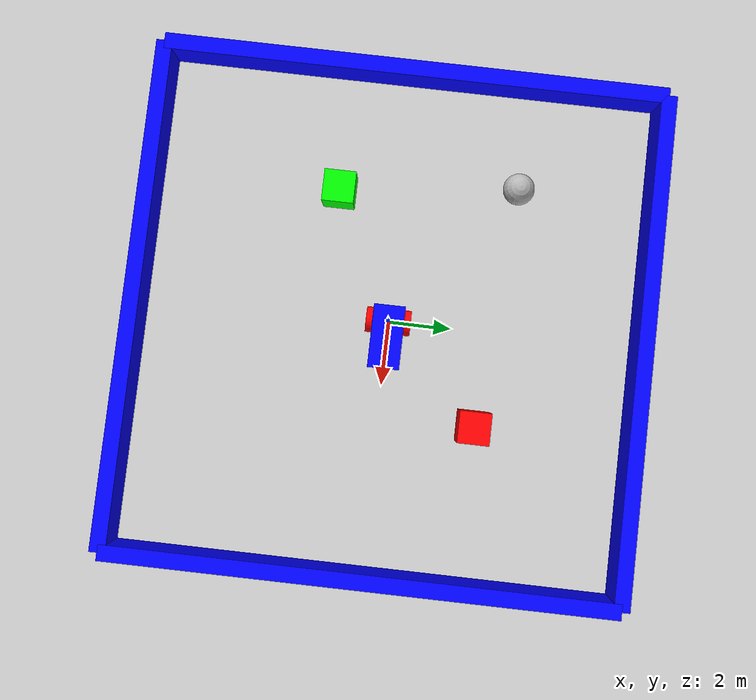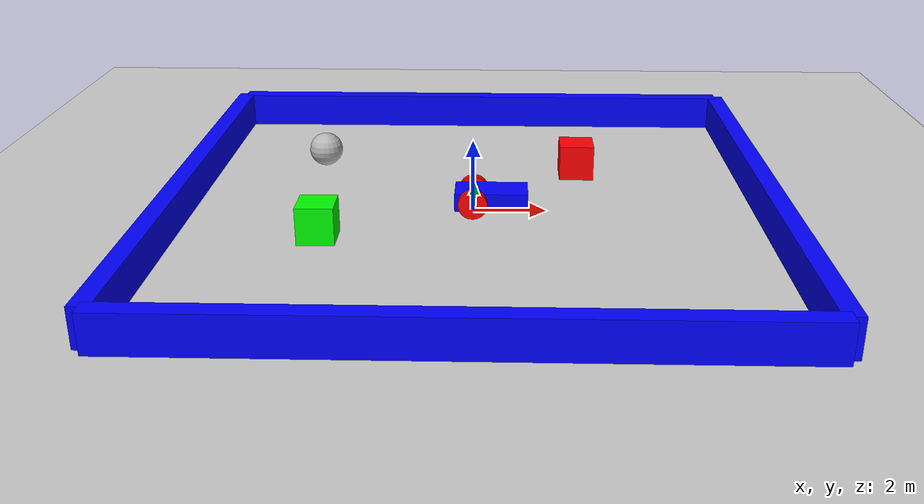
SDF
<?xml version="1.0" ?>
<sdf version='1.9'>
  <world name='car_world'>
    <physics name='1ms' type='ignored'>
      <max_step_size>0.001</max_step_size>
      <real_time_factor>1</real_time_factor>
      <real_time_update_rate>1000</real_time_update_rate>
    </physics>
    <plugin name='ignition::gazebo::systems::Physics' filename='ignition-gazebo-physics-system'/>
    <plugin name='ignition::gazebo::systems::UserCommands' filename='ignition-gazebo-user-commands-system'/>
    <plugin name='ignition::gazebo::systems::SceneBroadcaster' filename='ignition-gazebo-scene-broadcaster-system'/>
    <plugin filename="ignition-gazebo-imu-system"
      name="ignition::gazebo::systems::Imu">
    </plugin>
    <plugin filename="ignition-gazebo-sensors-system"
      name="ignition::gazebo::systems::Sensors">
        <render_engine>ogre2</render_engine>
    </plugin>
    <plugin filename="ignition-gazebo-contact-system"
      name="ignition::gazebo::systems::Contact">
    </plugin>

    <gravity>0 0 -9.8</gravity>
    <magnetic_field>6e-06 2.3e-05 -4.2e-05</magnetic_field>
    <atmosphere type='adiabatic'/>
    <scene>
      <ambient>0.4 0.4 0.4 1</ambient>
      <background>0.7 0.7 0.7 1</background>
      <shadows>true</shadows>
    </scene>

    <model name='ground_plane'>
      <static>true</static>
      <link name='link'>
        <collision name='collision'>
          <geometry>
            <plane>
              <normal>0 0 1</normal>
              <size>1 1</size>
            </plane>
          </geometry>
          <surface>
            <friction>
              <ode/>
            </friction>
            <bounce/>
            <contact/>
          </surface>
        </collision>
        <visual name='visual'>
          <geometry>
            <plane>
              <normal>0 0 1</normal>
              <size>100 100</size>
            </plane>
          </geometry>
          <material>
            <ambient>0.8 0.8 0.8 1</ambient>
            <diffuse>0.8 0.8 0.8 1</diffuse>
            <specular>0.8 0.8 0.8 1</specular>
          </material>
        </visual>
        <pose>0 0 0 0 -0 0</pose>
        <inertial>
          <pose>0 0 0 0 -0 0</pose>
          <mass>1</mass>
          <inertia>
            <ixx>1</ixx>
            <ixy>0</ixy>
            <ixz>0</ixz>
            <iyy>1</iyy>
            <iyz>0</iyz>
            <izz>1</izz>
          </inertia>
        </inertial>
        <enable_wind>false</enable_wind>
      </link>
      <pose>0 0 0 0 -0 0</pose>
      <self_collide>false</self_collide>
    </model>

    <include>
      <uri>file://home/robot/rg_ws/install/asm_description/share/asm_description/models/vehicle_blue.sdf</uri>
    </include>

    <model name='sphere'>
      <pose>-4.63224 3.65533 0.5 0 -0 0</pose>
      <link name='sphere_link'>
        <inertial>
          <inertia>
            <ixx>0.10000000000000001</ixx>
            <ixy>0</ixy>
            <ixz>0</ixz>
            <iyy>0.10000000000000001</iyy>
            <iyz>0</iyz>
            <izz>0.10000000000000001</izz>
          </inertia>
          <mass>1</mass>
          <pose>0 0 0 0 -0 0</pose>
        </inertial>
        <collision name='sphere_collision'>
          <geometry>
            <sphere>
              <radius>0.5</radius>
            </sphere>
          </geometry>
          <surface>
            <friction>
              <ode/>
            </friction>
            <bounce/>
            <contact/>
          </surface>
        </collision>
        <visual name='sphere_visual'>
          <geometry>
            <sphere>
              <radius>0.5</radius>
            </sphere>
          </geometry>
          <material>
            <ambient>0.3 0.3 0.3 1</ambient>
            <diffuse>0.7 0.7 0.7 1</diffuse>
            <specular>1 1 1 1</specular>
          </material>
        </visual>
        <pose>0 0 0 0 -0 0</pose>
        <enable_wind>false</enable_wind>
      </link>
      <static>false</static>
      <self_collide>false</self_collide>
    </model>
    <light name='sun' type='directional'>
      <pose>0 0 10 0 -0 0</pose>
      <cast_shadows>true</cast_shadows>
      <intensity>1</intensity>
      <direction>-0.5 0.1 -0.9</direction>
      <diffuse>0.8 0.8 0.8 1</diffuse>
      <specular>0.2 0.2 0.2 1</specular>
      <attenuation>
        <range>1000</range>
        <linear>0.01</linear>
        <constant>0.90000000000000002</constant>
        <quadratic>0.001</quadratic>
      </attenuation>
      <spot>
        <inner_angle>0</inner_angle>
        <outer_angle>0</outer_angle>
        <falloff>0</falloff>
      </spot>
    </light>
    <!-- Existing wall -->
    <model name='wall'>
      <static>true</static>
      <pose>8 0 0 0 0 0</pose>
      <link name='box'>
        <pose/>
        <visual name='visual'>
          <geometry>
            <box>
              <size>0.5 16.0 2.0</size>
            </box>
          </geometry>
          <material>
            <ambient>0.0 0.0 1.0 1</ambient>
            <diffuse>0.0 0.0 1.0 1</diffuse>
            <specular>0.0 0.0 1.0 1</specular>
          </material>
        </visual>
        <collision name='collision'>
          <geometry>
            <box>
              <size>0.5 16.0 2.0</size>
            </box>
          </geometry>
        </collision>
        <sensor name='sensor_contact' type='contact'>
          <contact>
            <collision>collision</collision>
          </contact>
        </sensor>
      </link>

    </model>

    <!-- New wall 1 -->
    <model name='wall_1'>
      <static>true</static>
      <pose>0 8 0 0 0 1.5708</pose>
      <link name='box'>
        <pose/>
        <visual name='visual'>
          <geometry>
            <box>
              <size>0.5 16.0 2.0</size>
            </box>
          </geometry>
          <material>
            <ambient>0.0 0.0 1.0 1</ambient>
            <diffuse>0.0 0.0 1.0 1</diffuse>
            <specular>0.0 0.0 1.0 1</specular>
          </material>
        </visual>
        <collision name='collision'>
          <geometry>
            <box>
              <size>0.5 16.0 2.0</size>
            </box>
          </geometry>
        </collision>
        <sensor name='sensor_contact' type='contact'>
          <contact>
            <collision>collision</collision>
          </contact>
        </sensor>
      </link>
    </model>

    <!-- New wall 2 -->
    <model name='wall_2'>
      <static>true</static>
      <pose>0 -8 0 0 0 1.5708</pose>
      <link name='box'>
        <pose/>
        <visual name='visual'>
          <geometry>
            <box>
              <size>0.5 16.0 2.0</size>
            </box>
          </geometry>
          <material>
            <ambient>0.0 0.0 1.0 1</ambient>
            <diffuse>0.0 0.0 1.0 1</diffuse>
            <specular>0.0 0.0 1.0 1</specular>
          </material>
        </visual>
        <collision name='collision'>
          <geometry>
            <box>
              <size>0.5 16.0 2.0</size>
            </box>
          </geometry>
        </collision>
        <sensor name='sensor_contact' type='contact'>
          <contact>
            <collision>collision</collision>
          </contact>
        </sensor>
      </link>

    </model>
    <!-- New wall 3 -->
    <model name='wall_3'>
      <static>true</static>
      <pose>-8 0 0 0 0 0</pose>
      <link name='box'>
        <pose/>
        <visual name='visual'>
          <geometry>
            <box>
              <size>0.5 16.0 2.0</size>
            </box>
          </geometry>
          <material>
            <ambient>0.0 0.0 1.0 1</ambient>
            <diffuse>0.0 0.0 1.0 1</diffuse>
            <specular>0.0 0.0 1.0 1</specular>
          </material>
        </visual>
        <collision name='collision'>
          <geometry>
            <box>
              <size>0.5 16.0 2.0</size>
            </box>
          </geometry>
        </collision>
        <sensor name='sensor_contact' type='contact'>
          <contact>
            <collision>collision</collision>
          </contact>
        </sensor>
      </link>

    </model>

    <!-- Obstacle 1 -->
    <model name='obstacle_1'>
      <static>true</static>
      <pose>3 3 0 0 0 0</pose>
      <link name='box'>
        <pose/>
        <visual name='visual'>
          <geometry>
            <box>
              <size>1 1 2</size>
            </box>
          </geometry>
          <material>
            <ambient>1.0 0.0 0.0 1</ambient>
            <diffuse>1.0 0.0 0.0 1</diffuse>
            <specular>1.0 0.0 0.0 1</specular>
          </material>
        </visual>
        <collision name='collision'>
          <geometry>
            <box>
              <size>1 1 2</size>
            </box>
          </geometry>
        </collision>
      </link>
    </model>

    <!-- Obstacle 2 -->
    <model name='obstacle_2'>
      <static>true</static>
      <pose>-4 -2 0 0 0 0</pose>
      <link name='box'>
        <pose/>
        <visual name='visual'>
          <geometry>
            <box>
              <size>1 1 2</size>
            </box>
          </geometry>
          <material>
            <ambient>0.0 1.0 0.0 1</ambient>
            <diffuse>0.0 1.0 0.0 1</diffuse>
            <specular>0.0 1.0 0.0 1</specular>
          </material>
        </visual>
        <collision name='collision'>
          <geometry>
            <box>
              <size>1 1 2</size>
            </box>
          </geometry>
        </collision>
      </link>
    </model>

  </world>
</sdf>

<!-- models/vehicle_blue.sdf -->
<sdf version='1.9'>
  <model name='vehicle_blue' canonical_link='chassis'>
    <link name='chassis'>
      <pose>0.5 0 0.4 0 -0 0</pose>
      <inertial>
        <mass>1.14395</mass>
        <inertia>
          <ixx>0.002</ixx>
          <ixy>0</ixy>
          <ixz>0</ixz>
          <iyy>0.002</iyy>
          <iyz>0</iyz>
          <izz>0.002</izz>
        </inertia>
        <pose>0 0 0 0 -0 0</pose>
      </inertial>
      <visual name='visual'>
        <geometry>
          <box>
            <size>2 1 0.5</size>
          </box>
        </geometry>
        <material>
          <ambient>0 0 1 1</ambient>
          <diffuse>0 0 1 1</diffuse>
          <specular>0 0 1 1</specular>
        </material>
      </visual>
      <collision name='collision'>
        <geometry>
          <box>
            <size>2 1 0.5</size>
          </box>
        </geometry>
        <surface>
          <friction>
            <ode/>
          </friction>
          <bounce/>
          <contact/>
        </surface>
      </collision>
      <sensor name='imu_sensor' type='imu'>
        <always_on>1</always_on>
        <update_rate>1</update_rate>
        <visualize>true</visualize>
        <topic>imu</topic>
      </sensor>
    </link>

    <link name='left_wheel'>
      <pose>0 0.6 0.4 -1.5707 0 0</pose>
      <inertial>
        <mass>1</mass>
        <inertia>
          <ixx>0.0002</ixx>
          <ixy>0</ixy>
          <ixz>0</ixz>
          <iyy>0.0002</iyy>
          <iyz>0</iyz>
          <izz>0.0002</izz>
        </inertia>
        <pose>0 0 0 0 -0 0</pose>
      </inertial>
      <visual name='visual'>
        <geometry>
          <cylinder>
            <radius>0.40000000000000002</radius>
            <length>0.20000000000000001</length>
          </cylinder>
        </geometry>
        <material>
          <ambient>1 0 0 1</ambient>
          <diffuse>1 0 0 1</diffuse>
          <specular>1 0 0 1</specular>
        </material>
      </visual>
      <collision name='collision'>
        <geometry>
          <cylinder>
            <radius>0.40000000000000002</radius>
            <length>0.20000000000000001</length>
          </cylinder>
        </geometry>
        <surface>
          <friction>
            <ode/>
          </friction>
          <bounce/>
          <contact/>
        </surface>
      </collision>
      <enable_wind>false</enable_wind>
    </link>
    <link name='right_wheel'>
      <pose>0 -0.6 0.4 -1.5707 0 0</pose>
      <inertial>
        <mass>1</mass>
        <inertia>
          <ixx>0.0002</ixx>
          <ixy>0</ixy>
          <ixz>0</ixz>
          <iyy>0.0002</iyy>
          <iyz>0</iyz>
          <izz>0.0002</izz>
        </inertia>
        <pose>0 0 0 0 -0 0</pose>
      </inertial>
      <visual name='visual'>
        <geometry>
          <cylinder>
            <radius>0.40000000000000002</radius>
            <length>0.20000000000000001</length>
          </cylinder>
        </geometry>
        <material>
          <ambient>1 0 0 1</ambient>
          <diffuse>1 0 0 1</diffuse>
          <specular>1 0 0 1</specular>
        </material>
      </visual>
      <collision name='collision'>
        <geometry>
          <cylinder>
            <radius>0.40000000000000002</radius>
            <length>0.20000000000000001</length>
          </cylinder>
        </geometry>
        <surface>
          <friction>
            <ode/>
          </friction>
          <bounce/>
          <contact/>
        </surface>
      </collision>
      <enable_wind>false</enable_wind>
    </link>

    <frame name='caster_frame' attached_to='chassis'>
      <pose>0.8 0 -0.2 0 0 0</pose>
    </frame>
    <link name='caster'>
      <pose relative_to='caster_frame'/>
      <inertial>
        <mass>1</mass>
        <inertia>
          <ixx>0.0002</ixx>
          <ixy>0</ixy>
          <ixz>0</ixz>
          <iyy>0.0002</iyy>
          <iyz>0</iyz>
          <izz>0.0002</izz>
        </inertia>
        <pose>0 0 0 0 -0 0</pose>
      </inertial>
      <visual name='visual'>
        <geometry>
          <sphere>
            <radius>0.20000000000000001</radius>
          </sphere>
        </geometry>
        <material>
          <ambient>0 1 0 1</ambient>
          <diffuse>0 1 0 1</diffuse>
          <specular>0 1 0 1</specular>
        </material>
      </visual>
      <collision name='collision'>
        <geometry>
          <sphere>
            <radius>0.20000000000000001</radius>
          </sphere>
        </geometry>
        <surface>
          <friction>
            <ode/>
          </friction>
          <bounce/>
          <contact/>
        </surface>
      </collision>
      <enable_wind>false</enable_wind>
    </link>

    <joint name='left_wheel_joint' type='revolute'>
      <pose>0 0 0 0 -0 0</pose>
      <parent>chassis</parent>
      <child>left_wheel</child>
      <axis>
        <xyz>0 9.6e-05 1</xyz>
        <limit>
          <lower>-1.7976900000000001e+308</lower>
          <upper>1.7976900000000001e+308</upper>
          <effort>inf</effort>
          <velocity>inf</velocity>
          <stiffness>100000000</stiffness>
          <dissipation>1</dissipation>
        </limit>
        <dynamics>
          <spring_reference>0</spring_reference>
          <spring_stiffness>0</spring_stiffness>
          <damping>0</damping>
          <friction>0</friction>
        </dynamics>
      </axis>
    </joint>
    <joint name='right_wheel_joint' type='revolute'>
      <pose>0 0 0 0 -0 0</pose>
      <parent>chassis</parent>
      <child>right_wheel</child>
      <axis>
        <xyz>0 9.6e-05 1</xyz>
        <limit>
          <lower>-1.7976900000000001e+308</lower>
          <upper>1.7976900000000001e+308</upper>
          <effort>inf</effort>
          <velocity>inf</velocity>
          <stiffness>100000000</stiffness>
          <dissipation>1</dissipation>
        </limit>
        <dynamics>
          <spring_reference>0</spring_reference>
          <spring_stiffness>0</spring_stiffness>
          <damping>0</damping>
          <friction>0</friction>
        </dynamics>
      </axis>
    </joint>
    <joint name='caster_wheel' type='ball'>
      <parent>chassis</parent>
      <child>caster</child>
      <xyz>0 0 0</xyz>
    </joint>

      <!-- lidar sensor -->
    <frame name="lidar_frame" attached_to='chassis'>
      <pose>0.8 0 0.2 0 0 0</pose>
    </frame>
    <link name="lidar_link">
      <pose relative_to='lidar_frame'/>
      <inertial>
        <mass>0.1</mass>
        <inertia>
          <ixx>0.0000000000000000000000002</ixx>
          <iyy>0.0000000000000000000000002</iyy>
          <izz>0.0000000000000000000000002</izz>
        </inertia>
      </inertial>
      <collision name="collision">
        <geometry>
          <box>
            <size>0.1 0.1 0.1</size>
          </box>
        </geometry>
      </collision>
      <visual name="visual">
        <geometry>
          <box>
            <size>0.1 0.1 0.1</size>
          </box>
        </geometry>
      </visual>
      <sensor name='gpu_lidar' type='gpu_lidar'>
        <pose>0 0 0 0 0 0</pose>
        <topic>scan</topic>
        <ignition_frame_id>vehicle_blue/lidar_link</ignition_frame_id>
        <update_rate>100</update_rate>
        <lidar>
          <scan>
            <horizontal>
              <samples>640</samples>
              <resolution>1</resolution>
              <min_angle>-2.1991148575</min_angle>
              <max_angle>2.1991148575</max_angle>
            </horizontal>
            <vertical>
              <samples>1</samples>
              <resolution>1</resolution>
              <min_angle>0.0</min_angle>
              <max_angle>0.0</max_angle>
            </vertical>
          </scan>
          <range>
            <min>0.08</min>
            <max>5.0</max>
            <resolution>0.005</resolution>
          </range>
        </lidar>
        <visualize>true</visualize>
      </sensor>
    </link>

    <joint name='lidar_joint' type='fixed'>
      <parent>chassis</parent>
      <child>lidar_link</child>
      <xyz>0 0 0</xyz>
    </joint>

    <plugin
          filename="libignition-gazebo-diff-drive-system.so"
          name="ignition::gazebo::systems::DiffDrive">
          <left_joint>left_wheel_joint</left_joint>
          <right_joint>right_wheel_joint</right_joint>
          <wheel_separation>1.2</wheel_separation>
          <wheel_radius>0.4</wheel_radius>
          <odom_publish_frequency>1</odom_publish_frequency>
      </plugin>

      <!-- control plugin -->

      <plugin filename="libignition-gazebo-triggered-publisher-system.so"
        name="ignition::gazebo::systems::TriggeredPublisher">
        <input type="ignition.msgs.Int32" topic="/keyboard/keypress">
            <match field="data">16777235</match>
        </input>
        <output type="ignition.msgs.Twist" topic="/model/vehicle_blue/cmd_vel">
            linear: {x: 2}, angular: {z: 0.0}
        </output>
      </plugin>
      <plugin filename="libignition-gazebo-triggered-publisher-system.so"
        name="ignition::gazebo::systems::TriggeredPublisher">
        <input type="ignition.msgs.Int32" topic="/keyboard/keypress">
            <match field="data">16777234</match>
        </input>
        <output type="ignition.msgs.Twist" topic="/model/vehicle_blue/cmd_vel">
            linear: {x: 0.0}, angular: {z: 1}
        </output>
      </plugin>
      <plugin filename="libignition-gazebo-triggered-publisher-system.so"
        name="ignition::gazebo::systems::TriggeredPublisher">
        <input type="ignition.msgs.Int32" topic="/keyboard/keypress">
            <match field="data">16777236</match>
        </input>
        <output type="ignition.msgs.Twist" topic="/model/vehicle_blue/cmd_vel">
            linear: {x: 0.0}, angular: {z: -1}
        </output>
      </plugin>
      <plugin filename="libignition-gazebo-triggered-publisher-system.so"
        name="ignition::gazebo::systems::TriggeredPublisher">
        <input type="ignition.msgs.Int32" topic="/keyboard/keypress">
            <match field="data">16777237</match>
        </input>
        <output type="ignition.msgs.Twist" topic="/model/vehicle_blue/cmd_vel">
            linear: {x: -2}, angular: {z: 0.0}
        </output>
      </plugin>
      <plugin filename="libignition-gazebo-triggered-publisher-system.so"
        name="ignition::gazebo::systems::TriggeredPublisher">
        <input type="ignition.msgs.Int32" topic="/keyboard/keypress">
            <match field="data">65</match>
        </input>
        <output type="ignition.msgs.Twist" topic="/model/vehicle_blue/cmd_vel">
            linear: {x: 0.0}, angular: {z: 0.0}
        </output>
      </plugin>
      <plugin
        filename="ignition-gazebo-joint-state-publisher-system"
        name="ignition::gazebo::systems::JointStatePublisher">
      </plugin>

      <plugin
        filename="ignition-gazebo-pose-publisher-system"
        name="ignition::gazebo::systems::PosePublisher">
        <publish_link_pose>true</publish_link_pose>
        <use_pose_vector_msg>true</use_pose_vector_msg>
        <static_publisher>true</static_publisher>
        <static_update_frequency>1</static_update_frequency>
      </plugin>

      <plugin
        filename="ignition-gazebo-odometry-publisher-system"
        name="ignition::gazebo::systems::OdometryPublisher">
        <odom_frame>vehicle_blue/odom</odom_frame>
        <robot_base_frame>vehicle_blue</robot_base_frame>
      </plugin>

  </model>
</sdf>
